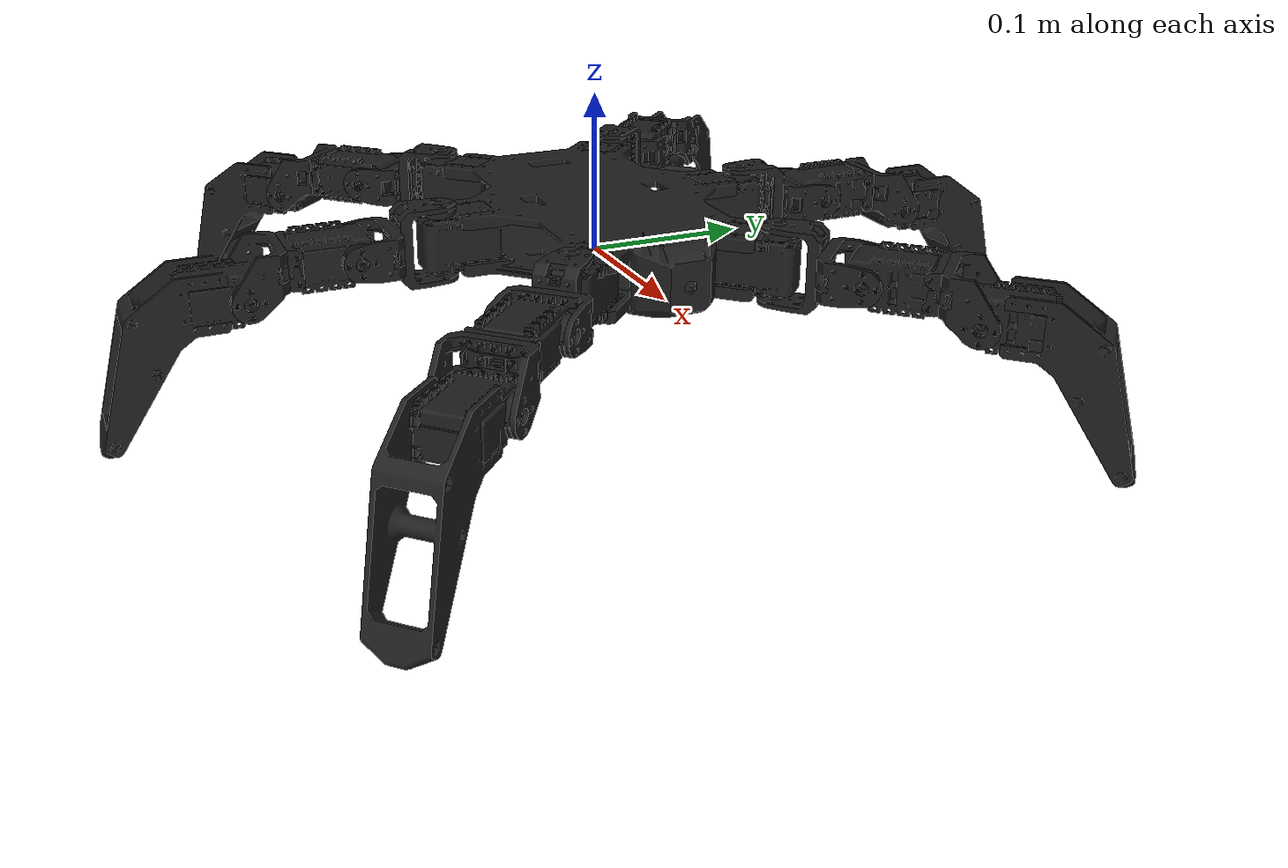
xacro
<?xml version="1.0"?>
<robot name="dr_qp" xmlns:xacro="http://ros.org/wiki/xacro">

  <xacro:arg name="robot_name" default = "dr_qp"/>
  <xacro:arg name="external_urdf_loc" default=""/>
  <xacro:arg name="load_gazebo_configs" default="false"/>

  <xacro:property name="urdf_loc" value="$(arg external_urdf_loc)"/>

  <xacro:if value="$(arg load_gazebo_configs)">
    <xacro:include filename="$(find drqp_gazebo)/config/drqp_texture.gazebo"/>
  </xacro:if>

  <material name="drqp_black">
    <texture filename="package://drqp_description/meshes/drqp_black.png"/>
  </material>
  <material name="drqp_black_tmp">
    <color rgba="0.5 0.5 0.5 0.2" />
  </material>

  <xacro:include filename="$(find drqp_description)/urdf/body.urdf.xacro"/>
  <xacro:include filename="$(find drqp_description)/urdf/leg.urdf.xacro"/>
  <xacro:include filename="$(find drqp_description)/urdf/gazebo.xacro"/>

  <xacro:leg robot_name="$(arg robot_name)" prefix="right_front" x="0.11692" y="-0.06387" yaw="${-pi/4}"/>
  <xacro:leg robot_name="$(arg robot_name)" prefix="right_middle" x="0" y="-0.103" yaw="${-pi/2}"/>
  <xacro:leg robot_name="$(arg robot_name)" prefix="right_back" x="-0.11692" y="-0.06387" yaw="${-3*pi/4}"/>
  <xacro:leg robot_name="$(arg robot_name)" prefix="left_front" x="0.11692" y="0.06387" yaw="${pi/4}"/>
  <xacro:leg robot_name="$(arg robot_name)" prefix="left_middle" x="0" y="0.103" yaw="${pi/2}"/>
  <xacro:leg robot_name="$(arg robot_name)" prefix="left_back" x="-0.11692" y="0.06387" yaw="${3*pi/4}"/>
  <gazebo reference="">
    <self_collide>1</self_collide>

    <!-- Params copied from https://www.youtube.com/watch?v=Gp3DF97yN7k&list=PL_0ePxMRfT22elbjPCf36MS02d6TK2sSk&index=1 -->
    <mu1>50</mu1>
    <mu2>25</mu2>
    <kp>25000</kp>
    <kd>0.05</kd>
  </gazebo>
</robot>

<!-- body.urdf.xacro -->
<robot name="dr_qp" xmlns:xacro="http://ros.org/wiki/xacro">

  <xacro:property name="body_height" value="0.037" />

  <link name="$(arg robot_name)/base_center_link">
    <visual>
      <origin xyz="0 0 -${body_height/2}" rpy="${pi/2} 0 ${pi}" />
      <geometry>
        <mesh filename="package://drqp_description/meshes/body-simple.stl" />
      </geometry>
      <material name="drqp_black"/>
    </visual>
    <collision>
      <origin xyz="0 0 -${body_height/2}" rpy="0 0 0" />
      <geometry>
        <mesh filename="package://drqp_description/meshes/body-collision.stl" />
      </geometry>
    </collision>
    <inertial>
      <origin rpy="0 0 0" xyz="0.001522 0.000302 0.015345"/>
      <mass value="1.522054" />
      <inertia ixx="0.0044660000" iyy="0.0084890000" izz="0.0092020000" ixy="0.0000076888" ixz="-0.0001245000" iyz="0.0000050996" />
    </inertial>
  </link>

  <link name="$(arg robot_name)/base_link"> <!-- AKA World -->
  </link>

  <joint name="base_bottom" type="fixed">
    <origin rpy="0 0 0" xyz="0 0 ${body_height/2}"/>
    <parent link="$(arg robot_name)/base_link"/>
    <child link="$(arg robot_name)/base_center_link"/>
  </joint>

  <joint name="base_bottom_to_camera" type="fixed">
    <origin rpy="0 0 0" xyz="0.132 0 0"/>
    <parent link="$(arg robot_name)/base_center_link"/>
    <child link="$(arg robot_name)/camera"/>
  </joint>

  <link name="$(arg robot_name)/camera">
  </link>

</robot>

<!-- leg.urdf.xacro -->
<robot xmlns:xacro="http://ros.org/wiki/xacro">

  <xacro:include filename="$(find drqp_description)/urdf/inertial_macros.xacro"/>
  <xacro:macro name="inertial_stub" params="">
    <xacro:property name="tiny_value" value="0.01"/>
    <xacro:inertial_box mass="${tiny_value}" x="${tiny_value}" y="${tiny_value}" z="${tiny_value}">
      <origin xyz="0 0 0" rpy="0 0 0"/>
    </xacro:inertial_box>
  </xacro:macro>

  <xacro:macro name="leg" params="robot_name prefix x y yaw">

  <joint name="${prefix}_coxa_servo" type="fixed">
    <origin rpy="0 0 ${yaw}" xyz="${x} ${y} 0"/>
    <parent link="${robot_name}/base_center_link"/>
    <child link="${robot_name}/${prefix}_coxa_servo"/>
  </joint>
  <gazebo reference='${prefix}_coxa_servo'>
    <preserveFixedJoint>true</preserveFixedJoint>
  </gazebo>

  <link name="${robot_name}/${prefix}_coxa_servo">
    <visual>
      <origin xyz="0 0 0" rpy="0 0 ${-pi/2}" />
      <geometry>
        <mesh filename="package://drqp_description/meshes/servo.stl" />
      </geometry>
      <material name="drqp_black"/>
    </visual>
    <collision>
      <origin xyz="0 0 0" rpy="0 0 ${-pi/2}" />
      <geometry>
        <mesh filename="package://drqp_description/meshes/servo-collision.stl" />
      </geometry>
    </collision>
    <inertial>
      <origin rpy="0 0 0" xyz="0.019066 -0.000002 0.006577"/>
      <mass value="0.02471" />
      <inertia ixx="0.0000215400" iyy="0.00002657000" izz="0.00002925000" ixy="-0.00000000122" ixz="-0.00000192741" iyz="-0.00000000001" />
    </inertial>
  </link>

  <joint name="${prefix}_coxa" type="revolute">
    <axis xyz="0 0 1"/>
    <limit effort="3" lower="${radians(-90)}" upper="${radians(90)}" velocity="${pi}"/>
    <parent link="${robot_name}/${prefix}_coxa_servo"/>
    <child link="${robot_name}/${prefix}_coxa_f2_link_1"/>
  </joint>
  <gazebo reference="${prefix}_coxa">
    <dampingFactor>0.04</dampingFactor>
    <implicitSpringDamper>true</implicitSpringDamper>
    <springReference>0.01</springReference>
  </gazebo>

  <link name="${robot_name}/${prefix}_coxa_f2_link_1">
    <visual>
      <origin rpy="0 0 ${pi/2}" xyz="0 0 0"/>
      <geometry>
        <mesh filename="package://drqp_description/meshes/F2.stl" />
      </geometry>
      <material name="drqp_black"/>
    </visual>
    <collision>
      <origin rpy="0 0 ${pi/2}" xyz="0 0 0"/>
      <geometry>
        <mesh filename="package://drqp_description/meshes/F2-collision.stl" />
      </geometry>
    </collision>
    <xacro:inertial_stub />
  </link>
  <joint name="${prefix}_coxa_inner" type="fixed">
    <origin rpy="0 0 0" xyz="${0.0265 * 2} 0 0"/>
    <parent link="${robot_name}/${prefix}_coxa_f2_link_1"/>
    <child link="${robot_name}/${prefix}_coxa_f2_link_2"/>
  </joint>
  <gazebo reference='${prefix}_coxa_inner'>
    <preserveFixedJoint>true</preserveFixedJoint>
  </gazebo>

  <link name="${robot_name}/${prefix}_coxa_f2_link_2">
    <visual>
      <origin rpy="0 ${pi/2} ${-pi/2}" xyz="0 0 0"/>
      <geometry>
        <mesh filename="package://drqp_description/meshes/F2.stl" />
      </geometry>
      <material name="drqp_black"/>
    </visual>
    <collision>
      <origin rpy="0 ${pi/2} ${-pi/2}" xyz="0 0 0"/>
      <geometry>
        <mesh filename="package://drqp_description/meshes/F2-collision.stl" />
      </geometry>
    </collision>
    <xacro:inertial_stub />
  </link>

  <joint name="${prefix}_femur" type="revolute">
    <axis xyz="0 1 0"/>
    <limit effort="3" lower="${radians(-98)}" upper="${radians(90)}" velocity="${pi}"/>
    <origin rpy="0 0 0" xyz="0 0 0"/>
    <parent link="${robot_name}/${prefix}_coxa_f2_link_2"/>
    <child link="${robot_name}/${prefix}_femur_servo"/>
  </joint>
  <gazebo reference="${prefix}_femur">
    <dampingFactor>0.04</dampingFactor>
    <implicitSpringDamper>true</implicitSpringDamper>
    <springReference>0.01</springReference>
  </gazebo>

  <link name="${robot_name}/${prefix}_femur_servo">
    <visual>
      <origin rpy="0 ${pi/2} ${pi/2}" xyz="0 0 0" />
      <geometry>
        <!--
          Origin is at the actuator center
          36mm - distance from actuator center to the center of the holes on the back
         -->
        <mesh filename="package://drqp_description/meshes/servo.stl" />
      </geometry>
      <material name="drqp_black"/>
    </visual>
    <collision>
      <origin rpy="0 ${pi/2} ${pi/2}" xyz="0 0 0" />
      <geometry>
        <mesh filename="package://drqp_description/meshes/servo-collision.stl" />
      </geometry>
    </collision>
    <inertial>
      <origin rpy="0 0 0" xyz="0.019066 -0.000002 0.006577"/>
      <mass value="0.02471" />
      <inertia ixx="0.0000215400" iyy="0.00002657000" izz="0.00002925000" ixy="-0.00000000122" ixz="-0.00000192741" iyz="-0.00000000001" />
    </inertial>
  </link>

  <joint name="${prefix}_femur_inner_1" type="fixed">
    <origin rpy="0 0 0" xyz="${0.036 + 0.0055} 0 0"/>
    <parent link="${robot_name}/${prefix}_femur_servo"/>
    <child link="${robot_name}/${prefix}_femur_link_f3"/>
  </joint>
  <gazebo reference='${prefix}_femur_inner_1'>
    <preserveFixedJoint>true</preserveFixedJoint>
  </gazebo>

  <link name="${robot_name}/${prefix}_femur_link_f3">
    <visual>
      <origin rpy="0 ${pi/2} ${pi/2}" xyz="0 0 0"/>
      <geometry>
        <!--
          Origin is at the center of the flat plane
          5.5mm - distance from origin to center of the side mounting holes
         -->
        <mesh filename="package://drqp_description/meshes/F3.stl" />
      </geometry>
      <material name="drqp_black"/>
    </visual>
    <collision>
      <origin rpy="0 ${pi/2} ${pi/2}" xyz="0 0 0"/>
      <geometry>
        <mesh filename="package://drqp_description/meshes/F3-collision.stl" />
      </geometry>
    </collision>
    <xacro:inertial_stub />
  </link>

  <joint name="${prefix}_femur_inner_2" type="fixed">
    <origin rpy="0 0 0" xyz="0.023 0 -0.015"/>
    <parent link="${robot_name}/${prefix}_femur_link_f3"/>
    <child link="${robot_name}/${prefix}_femur_link_f1"/>
  </joint>
  <gazebo reference='${prefix}_femur_inner_2'>
    <preserveFixedJoint>true</preserveFixedJoint>
  </gazebo>

  <link name="${robot_name}/${prefix}_femur_link_f1">
    <visual>
      <origin rpy="${pi} ${-pi/2} ${pi/2}" xyz="0 0 0"/>
      <geometry>
        <mesh filename="package://drqp_description/meshes/F1.stl" />
      </geometry>
      <material name="drqp_black"/>
    </visual>
    <collision>
      <origin rpy="${pi} ${-pi/2} ${pi/2}" xyz="0 0 0"/>
      <geometry>
        <mesh filename="package://drqp_description/meshes/F1-collision.stl" />
      </geometry>
    </collision>
    <xacro:inertial_stub />
  </link>

  <joint name="${prefix}_tibia" type="revolute">
    <axis xyz="0 1 0"/>
    <limit effort="3" lower="${radians(-125)}" upper="${radians(80)}" velocity="${pi}"/>
    <origin rpy="0 0 0" xyz="0 0 0"/>
    <parent link="${robot_name}/${prefix}_femur_link_f1"/>
    <child link="${robot_name}/${prefix}_tibia_servo"/>
  </joint>
  <gazebo reference="${prefix}_tibia">
    <dampingFactor>0.04</dampingFactor>
    <implicitSpringDamper>true</implicitSpringDamper>
    <springReference>0.01</springReference>
  </gazebo>

  <link name="${robot_name}/${prefix}_tibia_servo">
    <visual>
      <origin rpy="0 ${pi/2} ${pi/2}" xyz="0 0 0" />
      <geometry>
        <mesh filename="package://drqp_description/meshes/servo.stl" />
      </geometry>
      <material name="drqp_black"/>
    </visual>
    <collision>
      <origin rpy="0 ${pi/2} ${pi/2}" xyz="0 0 0" />
      <geometry>
        <mesh filename="package://drqp_description/meshes/servo-collision.stl" />
      </geometry>
    </collision>
    <inertial>
      <origin rpy="0 0 0" xyz="0.036797 0.000054 -0.011991"/>
      <mass value="0.171825" />
      <inertia ixx="0.0001762000" iyy="0.0005158000" izz="0.0003768000" ixy="-0.0000014522" ixz="0.0001789000" iyz="0.0000006181" />
    </inertial>
  </link>

  <joint name="${prefix}_tibia_leg" type="fixed">
    <origin rpy="0 0 0" xyz="0.0325 0 0"/>
    <parent link="${robot_name}/${prefix}_tibia_servo"/>
    <child link="${robot_name}/${prefix}_tibia_leg"/>
  </joint>
  <gazebo reference='${prefix}_tibia_leg'>
    <preserveFixedJoint>true</preserveFixedJoint>
  </gazebo>

  <link name="${robot_name}/${prefix}_tibia_leg">
    <visual>
      <origin rpy="0 0 0" xyz="0 0 0"/>
      <geometry>
        <!--
          Origin is at end servo attachment, 32.5 between servo pivot and this point
         -->
        <mesh filename="package://drqp_description/meshes/Tibia.stl" />
      </geometry>
      <material name="drqp_black"/>
    </visual>
    <collision>
      <origin rpy="0 0 0" xyz="0 0 0"/>
      <geometry>
        <mesh filename="package://drqp_description/meshes/Tibia-collision.stl" />
      </geometry>
    </collision>
    <xacro:inertial_stub />
  </link>

  <joint name="${prefix}_foot" type="fixed">
    <origin rpy="0 0 0" xyz="0.052797 0 -0.088395"/>
    <parent link="${robot_name}/${prefix}_tibia_leg"/>
    <child link="${robot_name}/${prefix}_foot_link"/>
  </joint>
  <gazebo reference='${prefix}_foot'>
    <preserveFixedJoint>true</preserveFixedJoint>
  </gazebo>

  <link name="${robot_name}/${prefix}_foot_link"/>

</xacro:macro>
</robot>
